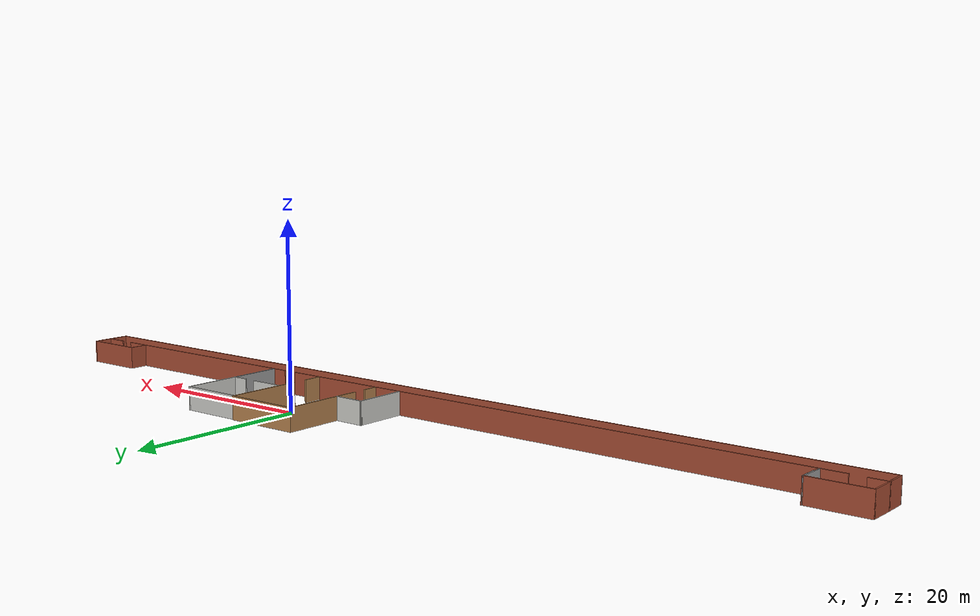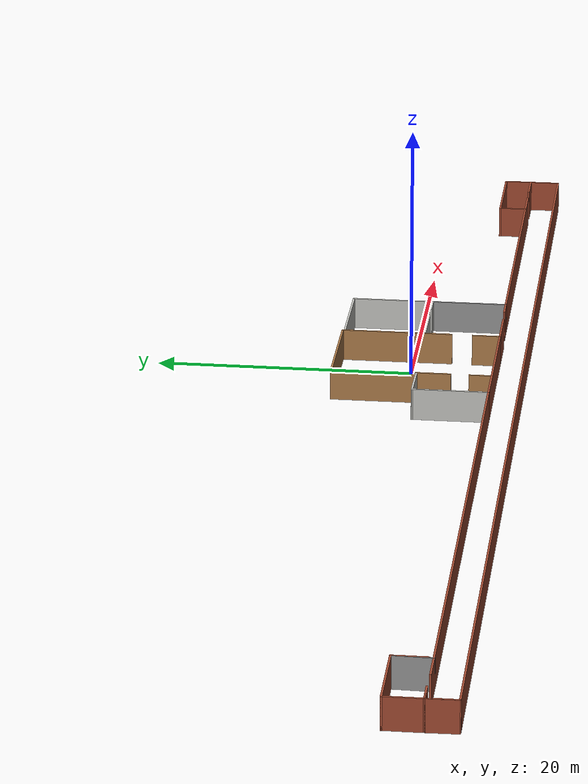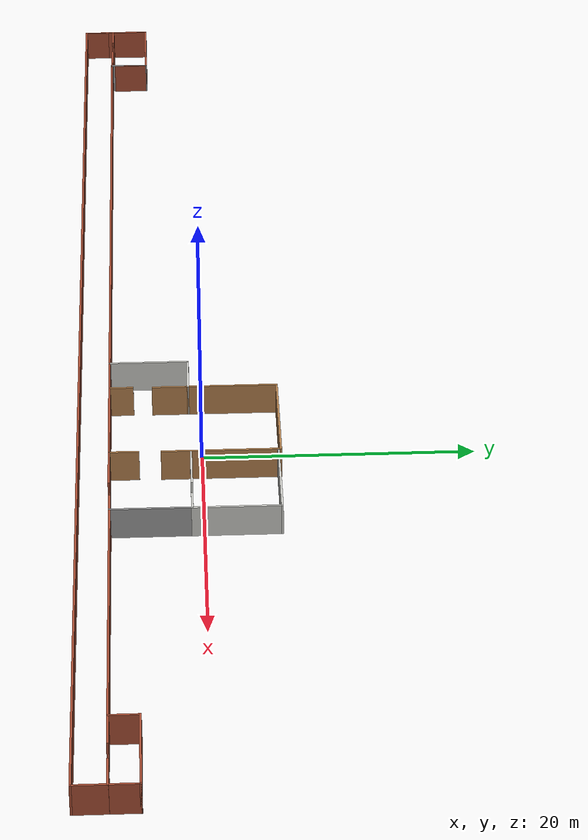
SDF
<?xml version='1.0'?>
<sdf version='1.6'>
  <model name='building.model'>
    <pose frame=''>-11.5395 -1.66476 0 0 -0 0</pose>
    <link name='Wall_100'>
      <collision name='Wall_100_Collision'>
        <geometry>
          <box>
            <size>6.25 0.15 2.5</size>
          </box>
        </geometry>
        <pose frame=''>0 0 1.25 0 -0 0</pose>
      </collision>
      <visual name='Wall_100_Visual'>
        <pose frame=''>0 0 1.25 0 -0 0</pose>
        <geometry>
          <box>
            <size>6.25 0.15 2.5</size>
          </box>
        </geometry>
        <material>
          <script>
            <uri>file://media/materials/scripts/gazebo.material</uri>
            <name>Gazebo/Bricks</name>
          </script>
          <ambient>1 1 1 1</ambient>
        </material>
        <meta>
          <layer>0</layer>
        </meta>
      </visual>
      <pose frame=''>-46.2678 -2.14479 0 0 -0 0</pose>
    </link>
    <link name='Wall_101'>
      <collision name='Wall_101_Collision'>
        <geometry>
          <box>
            <size>2.75 0.15 2.5</size>
          </box>
        </geometry>
        <pose frame=''>0 0 1.25 0 -0 0</pose>
      </collision>
      <visual name='Wall_101_Visual'>
        <pose frame=''>0 0 1.25 0 -0 0</pose>
        <geometry>
          <box>
            <size>2.75 0.15 2.5</size>
          </box>
        </geometry>
        <material>
          <script>
            <uri>file://media/materials/scripts/gazebo.material</uri>
            <name>Gazebo/Bricks</name>
          </script>
          <ambient>1 1 1 1</ambient>
        </material>
        <meta>
          <layer>0</layer>
        </meta>
      </visual>
      <pose frame=''>-43.2178 -3.44479 0 0 -0 -1.5708</pose>
    </link>
    <link name='Wall_104'>
      <collision name='Wall_104_Collision'>
        <geometry>
          <box>
            <size>3.08499 0.15 2.5</size>
          </box>
        </geometry>
        <pose frame=''>0 0 1.25 0 -0 0</pose>
      </collision>
      <visual name='Wall_104_Visual'>
        <pose frame=''>0 0 1.25 0 -0 0</pose>
        <geometry>
          <box>
            <size>3.08499 0.15 2.5</size>
          </box>
        </geometry>
        <material>
          <script>
            <uri>file://media/materials/scripts/gazebo.material</uri>
            <name>Gazebo/Grey</name>
          </script>
          <ambient>1 1 1 1</ambient>
        </material>
        <meta>
          <layer>0</layer>
        </meta>
      </visual>
      <pose frame=''>-43.2604 -3.61166 0 0 -0 1.54173</pose>
    </link>
    <link name='Wall_106'>
      <collision name='Wall_106_Collision'>
        <geometry>
          <box>
            <size>2.25 0.15 2.5</size>
          </box>
        </geometry>
        <pose frame=''>0 0 1.25 0 -0 0</pose>
      </collision>
      <visual name='Wall_106_Visual'>
        <pose frame=''>0 0 1.25 0 -0 0</pose>
        <geometry>
          <box>
            <size>2.25 0.15 2.5</size>
          </box>
        </geometry>
        <material>
          <script>
            <uri>file://media/materials/scripts/gazebo.material</uri>
            <name>Gazebo/Bricks</name>
          </script>
          <ambient>1 1 1 1</ambient>
        </material>
        <meta>
          <layer>0</layer>
        </meta>
      </visual>
      <pose frame=''>49.3189 -3.94785 0 0 -0 1.5708</pose>
    </link>
    <link name='Wall_107'>
      <collision name='Wall_107_Collision'>
        <geometry>
          <box>
            <size>6.75 0.15 2.5</size>
          </box>
        </geometry>
        <pose frame=''>0 0 1.25 0 -0 0</pose>
      </collision>
      <visual name='Wall_107_Visual'>
        <pose frame=''>0 0 1.25 0 -0 0</pose>
        <geometry>
          <box>
            <size>6.75 0.15 2.5</size>
          </box>
        </geometry>
        <material>
          <script>
            <uri>file://media/materials/scripts/gazebo.material</uri>
            <name>Gazebo/Bricks</name>
          </script>
          <ambient>1 1 1 1</ambient>
        </material>
        <meta>
          <layer>0</layer>
        </meta>
      </visual>
      <pose frame=''>46.0189 -2.89785 0 0 -0 3.14159</pose>
    </link>
    <link name='Wall_108'>
      <collision name='Wall_108_Collision'>
        <geometry>
          <box>
            <size>2.25 0.15 2.5</size>
          </box>
        </geometry>
        <pose frame=''>0 0 1.25 0 -0 0</pose>
      </collision>
      <visual name='Wall_108_Visual'>
        <pose frame=''>0 0 1.25 0 -0 0</pose>
        <geometry>
          <box>
            <size>2.25 0.15 2.5</size>
          </box>
        </geometry>
        <material>
          <script>
            <uri>file://media/materials/scripts/gazebo.material</uri>
            <name>Gazebo/Bricks</name>
          </script>
          <ambient>1 1 1 1</ambient>
        </material>
        <meta>
          <layer>0</layer>
        </meta>
      </visual>
      <pose frame=''>42.7189 -3.94785 0 0 -0 -1.5708</pose>
    </link>
    <link name='Wall_59'>
      <collision name='Wall_59_Collision'>
        <geometry>
          <box>
            <size>6.75 0.15 2.5</size>
          </box>
        </geometry>
        <pose frame=''>0 0 1.25 0 -0 0</pose>
      </collision>
      <visual name='Wall_59_Visual'>
        <pose frame=''>0 0 1.25 0 -0 0</pose>
        <geometry>
          <box>
            <size>6.75 0.15 2.5</size>
          </box>
        </geometry>
        <material>
          <script>
            <uri>file://media/materials/scripts/gazebo.material</uri>
            <name>Gazebo/Wood</name>
          </script>
          <ambient>1 1 1 1</ambient>
        </material>
        <meta>
          <layer>0</layer>
        </meta>
      </visual>
      <pose frame=''>5.89407 4.04901 0 0 -0 1.5708</pose>
    </link>
    <link name='Wall_60'>
      <collision name='Wall_60_Collision'>
        <geometry>
          <box>
            <size>8.25 0.15 2.5</size>
          </box>
        </geometry>
        <pose frame=''>0 0 1.25 0 -0 0</pose>
      </collision>
      <visual name='Wall_60_Visual'>
        <pose frame=''>0 0 1.25 0 -0 0</pose>
        <geometry>
          <box>
            <size>8.25 0.15 2.5</size>
          </box>
        </geometry>
        <material>
          <script>
            <uri>file://media/materials/scripts/gazebo.material</uri>
            <name>Gazebo/Wood</name>
          </script>
          <ambient>1 1 1 1</ambient>
        </material>
        <meta>
          <layer>0</layer>
        </meta>
      </visual>
      <pose frame=''>9.94407 7.34901 0 0 -0 0</pose>
    </link>
    <link name='Wall_61'>
      <collision name='Wall_61_Collision'>
        <geometry>
          <box>
            <size>8.75 0.15 2.5</size>
          </box>
        </geometry>
        <pose frame=''>0 0 1.25 0 -0 0</pose>
      </collision>
      <visual name='Wall_61_Visual'>
        <pose frame=''>0 0 1.25 0 -0 0</pose>
        <geometry>
          <box>
            <size>8.75 0.15 2.5</size>
          </box>
        </geometry>
        <material>
          <script>
            <uri>file://media/materials/scripts/gazebo.material</uri>
            <name>Gazebo/Wood</name>
          </script>
          <ambient>1 1 1 1</ambient>
        </material>
        <meta>
          <layer>0</layer>
        </meta>
      </visual>
      <pose frame=''>13.9941 3.04901 0 0 -0 -1.5708</pose>
    </link>
    <link name='Wall_65'>
      <collision name='Wall_65_Collision'>
        <geometry>
          <box>
            <size>2.25 0.15 2.5</size>
          </box>
        </geometry>
        <pose frame=''>0 0 1.25 0 -0 0</pose>
      </collision>
      <visual name='Wall_65_Visual'>
        <pose frame=''>0 0 1.25 0 -0 0</pose>
        <geometry>
          <box>
            <size>2.25 0.15 2.5</size>
          </box>
        </geometry>
        <material>
          <script>
            <uri>file://media/materials/scripts/gazebo.material</uri>
            <name>Gazebo/Wood</name>
          </script>
          <ambient>1 1 1 1</ambient>
        </material>
        <meta>
          <layer>0</layer>
        </meta>
      </visual>
      <pose frame=''>13.9578 -4.01847 0 0 -0 -1.5708</pose>
    </link>
    <link name='Wall_66'>
      <collision name='Wall_66_Collision'>
        <geometry>
          <box>
            <size>11.5 0.15 2.5</size>
          </box>
        </geometry>
        <pose frame=''>0 0 1.25 0 -0 0</pose>
      </collision>
      <visual name='Wall_66_Visual'>
        <pose frame=''>0 0 1.25 0 -0 0</pose>
        <geometry>
          <box>
            <size>11.5 0.15 2.5</size>
          </box>
        </geometry>
        <material>
          <script>
            <uri>file://media/materials/scripts/gazebo.material</uri>
            <name>Gazebo/Bricks</name>
          </script>
          <ambient>1 1 1 1</ambient>
        </material>
        <meta>
          <layer>0</layer>
        </meta>
      </visual>
      <pose frame=''>8.28284 -5.06847 0 0 -0 3.14159</pose>
    </link>
    <link name='Wall_67'>
      <collision name='Wall_67_Collision'>
        <geometry>
          <box>
            <size>6 0.15 2.5</size>
          </box>
        </geometry>
        <pose frame=''>0 0 1.25 0 -0 0</pose>
      </collision>
      <visual name='Wall_67_Visual'>
        <pose frame=''>0 0 1.25 0 -0 0</pose>
        <geometry>
          <box>
            <size>6 0.15 2.5</size>
          </box>
        </geometry>
        <material>
          <script>
            <uri>file://media/materials/scripts/gazebo.material</uri>
            <name>Gazebo/CeilingTiled</name>
          </script>
          <ambient>1 1 1 1</ambient>
        </material>
        <meta>
          <layer>0</layer>
        </meta>
      </visual>
      <pose frame=''>2.60784 -2.14347 0 0 -0 1.5708</pose>
    </link>
    <link name='Wall_68'>
      <collision name='Wall_68_Collision'>
        <geometry>
          <box>
            <size>3.43639 0.15 2.5</size>
          </box>
        </geometry>
        <pose frame=''>0 0 1.25 0 -0 0</pose>
      </collision>
      <visual name='Wall_68_Visual'>
        <pose frame=''>0 0 1.25 0 -0 0</pose>
        <geometry>
          <box>
            <size>3.43639 0.15 2.5</size>
          </box>
        </geometry>
        <material>
          <script>
            <uri>file://media/materials/scripts/gazebo.material</uri>
            <name>Gazebo/CeilingTiled</name>
          </script>
          <ambient>1 1 1 1</ambient>
        </material>
        <meta>
          <layer>0</layer>
        </meta>
      </visual>
      <pose frame=''>4.25096 0.765269 0 0 -0 -0.009896</pose>
    </link>
    <link name='Wall_69'>
      <collision name='Wall_69_Collision'>
        <geometry>
          <box>
            <size>2.75 0.15 2.5</size>
          </box>
        </geometry>
        <pose frame=''>0 0 1.25 0 -0 0</pose>
      </collision>
      <visual name='Wall_69_Visual'>
        <pose frame=''>0 0 1.25 0 -0 0</pose>
        <geometry>
          <box>
            <size>2.75 0.15 2.5</size>
          </box>
        </geometry>
        <material>
          <script>
            <uri>file://media/materials/scripts/gazebo.material</uri>
            <name>Gazebo/Wood</name>
          </script>
          <ambient>1 1 1 1</ambient>
        </material>
        <meta>
          <layer>0</layer>
        </meta>
      </visual>
      <pose frame=''>5.89407 -0.550992 0 0 -0 -1.5708</pose>
    </link>
    <link name='Wall_71'>
      <collision name='Wall_71_Collision'>
        <geometry>
          <box>
            <size>1.75 0.15 2.5</size>
          </box>
        </geometry>
        <pose frame=''>0 0 1.25 0 -0 0</pose>
      </collision>
      <visual name='Wall_71_Visual'>
        <pose frame=''>0 0 1.25 0 -0 0</pose>
        <geometry>
          <box>
            <size>1.75 0.15 2.5</size>
          </box>
        </geometry>
        <material>
          <script>
            <uri>file://media/materials/scripts/gazebo.material</uri>
            <name>Gazebo/Wood</name>
          </script>
          <ambient>1 1 1 1</ambient>
        </material>
        <meta>
          <layer>0</layer>
        </meta>
      </visual>
      <pose frame=''>5.86268 -4.169 0 0 -0 1.5708</pose>
    </link>
    <link name='Wall_73'>
      <collision name='Wall_73_Collision'>
        <geometry>
          <box>
            <size>3.75 0.15 2.5</size>
          </box>
        </geometry>
        <pose frame=''>0 0 1.25 0 -0 0</pose>
      </collision>
      <visual name='Wall_73_Visual'>
        <pose frame=''>0 0 1.25 0 -0 0</pose>
        <geometry>
          <box>
            <size>3.75 0.15 2.5</size>
          </box>
        </geometry>
        <material>
          <script>
            <uri>file://media/materials/scripts/gazebo.material</uri>
            <name>Gazebo/Bricks</name>
          </script>
          <ambient>1 1 1 1</ambient>
        </material>
        <meta>
          <layer>0</layer>
        </meta>
      </visual>
      <pose frame=''>15.7578 -5.06847 0 0 -0 0</pose>
    </link>
    <link name='Wall_75'>
      <collision name='Wall_75_Collision'>
        <geometry>
          <box>
            <size>1.75 0.15 2.5</size>
          </box>
        </geometry>
        <pose frame=''>0 0 1.25 0 -0 0</pose>
      </collision>
      <visual name='Wall_75_Visual'>
        <pose frame=''>0 0 1.25 0 -0 0</pose>
        <geometry>
          <box>
            <size>1.75 0.15 2.5</size>
          </box>
        </geometry>
        <material>
          <script>
            <uri>file://media/materials/scripts/gazebo.material</uri>
            <name>Gazebo/Bricks</name>
          </script>
          <ambient>1 1 1 1</ambient>
        </material>
        <meta>
          <layer>0</layer>
        </meta>
      </visual>
      <pose frame=''>19.9685 -5.01552 0 0 -0 0</pose>
    </link>
    <link name='Wall_76'>
      <collision name='Wall_76_Collision'>
        <geometry>
          <box>
            <size>6 0.15 2.5</size>
          </box>
        </geometry>
        <pose frame=''>0 0 1.25 0 -0 0</pose>
      </collision>
      <visual name='Wall_76_Visual'>
        <pose frame=''>0 0 1.25 0 -0 0</pose>
        <geometry>
          <box>
            <size>6 0.15 2.5</size>
          </box>
        </geometry>
        <material>
          <script>
            <uri>file://media/materials/scripts/gazebo.material</uri>
            <name>Gazebo/Grey</name>
          </script>
          <ambient>1 1 1 1</ambient>
        </material>
        <meta>
          <layer>0</layer>
        </meta>
      </visual>
      <pose frame=''>20.7685 -2.09052 0 0 -0 1.5708</pose>
    </link>
    <link name='Wall_77'>
      <collision name='Wall_77_Collision'>
        <geometry>
          <box>
            <size>1.75 0.15 2.5</size>
          </box>
        </geometry>
        <pose frame=''>0 0 1.25 0 -0 0</pose>
      </collision>
      <visual name='Wall_77_Visual'>
        <pose frame=''>0 0 1.25 0 -0 0</pose>
        <geometry>
          <box>
            <size>1.75 0.15 2.5</size>
          </box>
        </geometry>
        <material>
          <script>
            <uri>file://media/materials/scripts/gazebo.material</uri>
            <name>Gazebo/CeilingTiled</name>
          </script>
          <ambient>1 1 1 1</ambient>
        </material>
        <meta>
          <layer>0</layer>
        </meta>
      </visual>
      <pose frame=''>19.9685 0.834478 0 0 -0 3.14159</pose>
    </link>
    <link name='Wall_79'>
      <collision name='Wall_79_Collision'>
        <geometry>
          <box>
            <size>3.75 0.15 2.5</size>
          </box>
        </geometry>
        <pose frame=''>0 0 1.25 0 -0 0</pose>
      </collision>
      <visual name='Wall_79_Visual'>
        <pose frame=''>0 0 1.25 0 -0 0</pose>
        <geometry>
          <box>
            <size>3.75 0.15 2.5</size>
          </box>
        </geometry>
        <material>
          <script>
            <uri>file://media/materials/scripts/gazebo.material</uri>
            <name>Gazebo/CeilingTiled</name>
          </script>
          <ambient>1 1 1 1</ambient>
        </material>
        <meta>
          <layer>0</layer>
        </meta>
      </visual>
      <pose frame=''>15.9728 0.846491 0 0 -0 3.14159</pose>
    </link>
    <link name='Wall_81'>
      <collision name='Wall_81_Collision'>
        <geometry>
          <box>
            <size>6.5 0.15 2.5</size>
          </box>
        </geometry>
        <pose frame=''>0 0 1.25 0 -0 0</pose>
      </collision>
      <visual name='Wall_81_Visual'>
        <pose frame=''>0 0 1.25 0 -0 0</pose>
        <geometry>
          <box>
            <size>6.5 0.15 2.5</size>
          </box>
        </geometry>
        <material>
          <script>
            <uri>file://media/materials/scripts/gazebo.material</uri>
            <name>Gazebo/CeilingTiled</name>
          </script>
          <ambient>1 1 1 1</ambient>
        </material>
        <meta>
          <layer>0</layer>
        </meta>
      </visual>
      <pose frame=''>20.7685 4.00948 0 0 -0 1.5708</pose>
    </link>
    <link name='Wall_82'>
      <collision name='Wall_82_Collision'>
        <geometry>
          <box>
            <size>6.75 0.15 2.5</size>
          </box>
        </geometry>
        <pose frame=''>0 0 1.25 0 -0 0</pose>
      </collision>
      <visual name='Wall_82_Visual'>
        <pose frame=''>0 0 1.25 0 -0 0</pose>
        <geometry>
          <box>
            <size>6.75 0.15 2.5</size>
          </box>
        </geometry>
        <material>
          <script>
            <uri>file://media/materials/scripts/gazebo.material</uri>
            <name>Gazebo/CeilingTiled</name>
          </script>
          <ambient>1 1 1 1</ambient>
        </material>
        <meta>
          <layer>0</layer>
        </meta>
      </visual>
      <pose frame=''>17.4685 7.18448 0 0 -0 3.14159</pose>
    </link>
    <link name='Wall_84'>
      <collision name='Wall_84_Collision'>
        <geometry>
          <box>
            <size>24.75 0.15 2.5</size>
          </box>
        </geometry>
        <pose frame=''>0 0 1.25 0 -0 0</pose>
      </collision>
      <visual name='Wall_84_Visual'>
        <pose frame=''>0 0 1.25 0 -0 0</pose>
        <geometry>
          <box>
            <size>24.75 0.15 2.5</size>
          </box>
        </geometry>
        <material>
          <script>
            <uri>file://media/materials/scripts/gazebo.material</uri>
            <name>Gazebo/Bricks</name>
          </script>
          <ambient>1 1 1 1</ambient>
        </material>
        <meta>
          <layer>0</layer>
        </meta>
      </visual>
      <pose frame=''>33.0685 -5.01552 0 0 -0 0</pose>
    </link>
    <link name='Wall_86'>
      <collision name='Wall_86_Collision'>
        <geometry>
          <box>
            <size>2.5 0.15 2.5</size>
          </box>
        </geometry>
        <pose frame=''>0 0 1.25 0 -0 0</pose>
      </collision>
      <visual name='Wall_86_Visual'>
        <pose frame=''>0 0 1.25 0 -0 0</pose>
        <geometry>
          <box>
            <size>2.5 0.15 2.5</size>
          </box>
        </geometry>
        <material>
          <script>
            <uri>file://media/materials/scripts/gazebo.material</uri>
            <name>Gazebo/Bricks</name>
          </script>
          <ambient>1 1 1 1</ambient>
        </material>
        <meta>
          <layer>0</layer>
        </meta>
      </visual>
      <pose frame=''>48.1439 -4.99785 0 0 -0 0</pose>
    </link>
    <link name='Wall_87'>
      <collision name='Wall_87_Collision'>
        <geometry>
          <box>
            <size>2.5 0.15 2.5</size>
          </box>
        </geometry>
        <pose frame=''>0 0 1.25 0 -0 0</pose>
      </collision>
      <visual name='Wall_87_Visual'>
        <pose frame=''>0 0 1.25 0 -0 0</pose>
        <geometry>
          <box>
            <size>2.5 0.15 2.5</size>
          </box>
        </geometry>
        <material>
          <script>
            <uri>file://media/materials/scripts/gazebo.material</uri>
            <name>Gazebo/Bricks</name>
          </script>
          <ambient>1 1 1 1</ambient>
        </material>
        <meta>
          <layer>0</layer>
        </meta>
      </visual>
      <pose frame=''>49.3189 -6.17285 0 0 -0 -1.5708</pose>
    </link>
    <link name='Wall_88'>
      <collision name='Wall_88_Collision'>
        <geometry>
          <box>
            <size>98.75 0.15 2.5</size>
          </box>
        </geometry>
        <pose frame=''>0 0 1.25 0 -0 0</pose>
      </collision>
      <visual name='Wall_88_Visual'>
        <pose frame=''>0 0 1.25 0 -0 0</pose>
        <geometry>
          <box>
            <size>98.75 0.15 2.5</size>
          </box>
        </geometry>
        <material>
          <script>
            <uri>file://media/materials/scripts/gazebo.material</uri>
            <name>Gazebo/Bricks</name>
          </script>
          <ambient>1 1 1 1</ambient>
        </material>
        <meta>
          <layer>0</layer>
        </meta>
      </visual>
      <pose frame=''>0.018926 -7.34785 0 0 -0 3.14159</pose>
    </link>
    <link name='Wall_89'>
      <collision name='Wall_89_Collision'>
        <geometry>
          <box>
            <size>2 0.15 2.5</size>
          </box>
        </geometry>
        <pose frame=''>0 0 1.25 0 -0 0</pose>
      </collision>
      <visual name='Wall_89_Visual'>
        <pose frame=''>0 0 1.25 0 -0 0</pose>
        <geometry>
          <box>
            <size>2 0.15 2.5</size>
          </box>
        </geometry>
        <material>
          <script>
            <uri>file://media/materials/scripts/gazebo.material</uri>
            <name>Gazebo/Bricks</name>
          </script>
          <ambient>1 1 1 1</ambient>
        </material>
        <meta>
          <layer>0</layer>
        </meta>
      </visual>
      <pose frame=''>-49.2811 -6.42285 0 0 -0 1.5708</pose>
    </link>
    <link name='Wall_91'>
      <collision name='Wall_91_Collision'>
        <geometry>
          <box>
            <size>48.5 0.15 2.5</size>
          </box>
        </geometry>
        <pose frame=''>0 0 1.25 0 -0 0</pose>
      </collision>
      <visual name='Wall_91_Visual'>
        <pose frame=''>0 0 1.25 0 -0 0</pose>
        <geometry>
          <box>
            <size>48.5 0.15 2.5</size>
          </box>
        </geometry>
        <material>
          <script>
            <uri>file://media/materials/scripts/gazebo.material</uri>
            <name>Gazebo/Bricks</name>
          </script>
          <ambient>1 1 1 1</ambient>
        </material>
        <meta>
          <layer>0</layer>
        </meta>
      </visual>
      <pose frame=''>-21.5672 -5.06847 0 0 -0 3.14159</pose>
    </link>
    <link name='Wall_93'>
      <collision name='Wall_93_Collision'>
        <geometry>
          <box>
            <size>1.75 0.15 2.5</size>
          </box>
        </geometry>
        <pose frame=''>0 0 1.25 0 -0 0</pose>
      </collision>
      <visual name='Wall_93_Visual'>
        <pose frame=''>0 0 1.25 0 -0 0</pose>
        <geometry>
          <box>
            <size>1.75 0.15 2.5</size>
          </box>
        </geometry>
        <material>
          <script>
            <uri>file://media/materials/scripts/gazebo.material</uri>
            <name>Gazebo/Bricks</name>
          </script>
          <ambient>1 1 1 1</ambient>
        </material>
        <meta>
          <layer>0</layer>
        </meta>
      </visual>
      <pose frame=''>-48.3149 -4.99479 0 0 -0 3.14159</pose>
    </link>
    <link name='Wall_96'>
      <collision name='Wall_96_Collision'>
        <geometry>
          <box>
            <size>0.75 0.15 2.5</size>
          </box>
        </geometry>
        <pose frame=''>0 0 1.25 0 -0 0</pose>
      </collision>
      <visual name='Wall_96_Visual'>
        <pose frame=''>0 0 1.25 0 -0 0</pose>
        <geometry>
          <box>
            <size>0.75 0.15 2.5</size>
          </box>
        </geometry>
        <material>
          <script>
            <uri>file://media/materials/scripts/gazebo.material</uri>
            <name>Gazebo/Bricks</name>
          </script>
          <ambient>1 1 1 1</ambient>
        </material>
        <meta>
          <layer>0</layer>
        </meta>
      </visual>
      <pose frame=''>-49.0178 -4.99479 0 0 -0 3.14159</pose>
    </link>
    <link name='Wall_97'>
      <collision name='Wall_97_Collision'>
        <geometry>
          <box>
            <size>2.50334 0.15 2.5</size>
          </box>
        </geometry>
        <pose frame=''>0 0 1.25 0 -0 0</pose>
      </collision>
      <visual name='Wall_97_Visual'>
        <pose frame=''>0 0 1.25 0 -0 0</pose>
        <geometry>
          <box>
            <size>2.50334 0.15 2.5</size>
          </box>
        </geometry>
        <material>
          <script>
            <uri>file://media/materials/scripts/gazebo.material</uri>
            <name>Gazebo/Bricks</name>
          </script>
          <ambient>1 1 1 1</ambient>
        </material>
        <meta>
          <layer>0</layer>
        </meta>
      </visual>
      <pose frame=''>-49.2994 -6.17132 0 0 -0 -1.5552</pose>
    </link>
    <link name='Wall_99'>
      <collision name='Wall_99_Collision'>
        <geometry>
          <box>
            <size>3 0.15 2.5</size>
          </box>
        </geometry>
        <pose frame=''>0 0 1.25 0 -0 0</pose>
      </collision>
      <visual name='Wall_99_Visual'>
        <pose frame=''>0 0 1.25 0 -0 0</pose>
        <geometry>
          <box>
            <size>3 0.15 2.5</size>
          </box>
        </geometry>
        <material>
          <script>
            <uri>file://media/materials/scripts/gazebo.material</uri>
            <name>Gazebo/Bricks</name>
          </script>
          <ambient>1 1 1 1</ambient>
        </material>
        <meta>
          <layer>0</layer>
        </meta>
      </visual>
      <pose frame=''>-49.3178 -3.56979 0 0 -0 1.5708</pose>
    </link>
    <static>1</static>
  </model>
</sdf>
